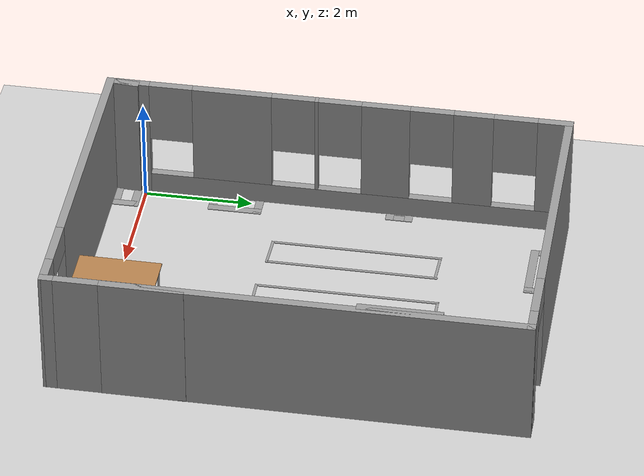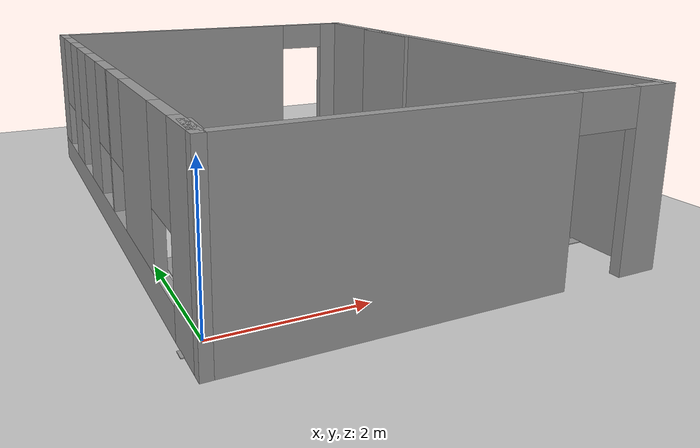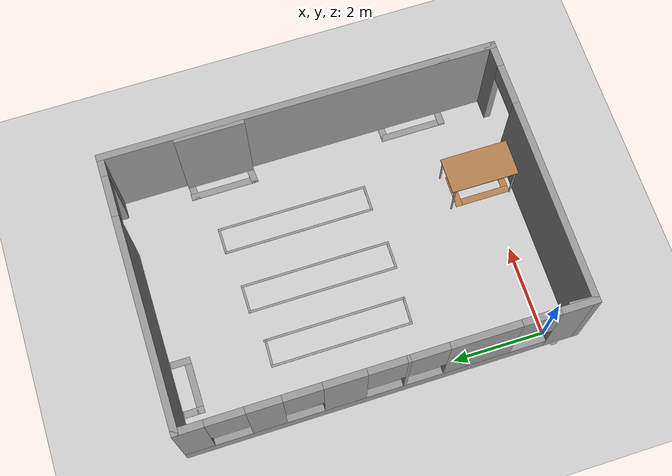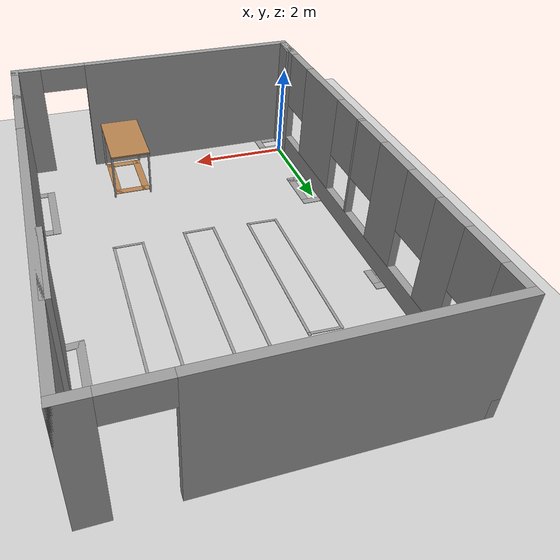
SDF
<sdf version="1.7">
 <world name="default">
  <light name="sun" type="directional">
   <pose>0 0 10 0 -0 0</pose>
   <diffuse>0.8 0.8 0.8 1</diffuse>
   <specular>0.2 0.2 0.2 1</specular>
   <attenuation>
    <range>1000</range>
    <constant>0.9</constant>
    <linear>0.01</linear>
    <quadratic>0.001</quadratic>
   </attenuation>
   <direction>-0.5 0.1 -0.9</direction>
   <spot><inner_angle>0</inner_angle><outer_angle>0</outer_angle><falloff>0</falloff></spot>
  </light>
  <model name="ground_plane">
   <static>1</static>
   <link name="link">
    <collision name="collision">
     <geometry><plane><normal>0 0 1</normal><size>100 100</size></plane></geometry>
     <surface>
      <contact><collide_bitmask>65535</collide_bitmask></contact>
      <friction><ode><mu>100</mu><mu2>50</mu2></ode></friction>
     </surface>
    </collision>
    <visual name="visual">
     <cast_shadows>0</cast_shadows>
     <geometry><plane><normal>0 0 1</normal><size>100 100</size></plane></geometry>
     <material>
      <script><uri>file://media/materials/scripts/gazebo.material</uri><name>Gazebo/Grey</name></script>
     </material>
    </visual>
   </link>
  </model>
  <gravity>0 0 -9.8</gravity>
  <magnetic_field>6e-06 2.3e-05 -4.2e-05</magnetic_field>
  <atmosphere type="adiabatic"/>
  <physics type="ode">
   <max_step_size>0.001</max_step_size>
   <real_time_factor>1</real_time_factor>
   <real_time_update_rate>1000</real_time_update_rate>
  </physics>
  <scene><ambient>0.4 0.4 0.4 1</ambient><background>0.7 0.7 0.7 1</background><shadows>1</shadows></scene>
  <spherical_coordinates>
   <surface_model>EARTH_WGS84</surface_model>
   <latitude_deg>0</latitude_deg>
   <longitude_deg>0</longitude_deg>
   <elevation>0</elevation>
   <heading_deg>0</heading_deg>
  </spherical_coordinates>
  <model name="csl_lab">
   <pose>2.72279 3.58776 -0.099865 0 -0 0</pose>
   <link name="Wall_0">
    <pose>0.018481 4.225 0 0 -0 0</pose>
    <visual name="Wall_0_Visual_0">
     <pose>-0.703474 0 1.25 0 -0 0</pose>
     <geometry><box><size>4.59305 0.15 2.5</size></box></geometry>
     <material>
      <script><uri>file://media/materials/scripts/gazebo.material</uri><name>Gazebo/Grey</name></script>
      <ambient>1 1 1 1</ambient>
     </material>
     <meta><layer>0</layer></meta>
    </visual>
    <collision name="Wall_0_Collision_0">
     <geometry><box><size>4.59305 0.15 2.5</size></box></geometry>
     <pose>-0.703474 0 1.25 0 -0 0</pose>
    </collision>
    <visual name="Wall_0_Visual_1">
     <pose>2.74653 0 1.25 0 -0 0</pose>
     <geometry><box><size>0.506948 0.15 2.5</size></box></geometry>
     <material>
      <script><uri>file://media/materials/scripts/gazebo.material</uri><name>Gazebo/Grey</name></script>
      <ambient>1 1 1 1</ambient>
     </material>
     <meta><layer>0</layer></meta>
    </visual>
    <collision name="Wall_0_Collision_1">
     <geometry><box><size>0.506948 0.15 2.5</size></box></geometry>
     <pose>2.74653 0 1.25 0 -0 0</pose>
    </collision>
    <visual name="Wall_0_Visual_2">
     <pose>2.04305 0 2.25 0 -0 0</pose>
     <geometry><box><size>0.9 0.15 0.5</size></box></geometry>
     <material>
      <script><uri>file://media/materials/scripts/gazebo.material</uri><name>Gazebo/Grey</name></script>
      <ambient>1 1 1 1</ambient>
     </material>
     <meta><layer>0</layer></meta>
    </visual>
    <collision name="Wall_0_Collision_2">
     <geometry><box><size>0.9 0.15 0.5</size></box></geometry>
     <pose>2.04305 0 2.25 0 -0 0</pose>
    </collision>
   </link>
   <link name="Wall_1">
    <collision name="Wall_1_Collision">
     <geometry><box><size>8.5 0.15 2.5</size></box></geometry>
     <pose>0 0 1.25 0 -0 0</pose>
    </collision>
    <visual name="Wall_1_Visual">
     <pose>0 0 1.25 0 -0 0</pose>
     <geometry><box><size>8.5 0.15 2.5</size></box></geometry>
     <material>
      <script><uri>file://media/materials/scripts/gazebo.material</uri><name>Gazebo/Grey</name></script>
      <ambient>1 1 1 1</ambient>
     </material>
     <meta><layer>0</layer></meta>
    </visual>
    <pose>2.94348 0.05 0 0 -0 -1.5708</pose>
   </link>
   <link name="Wall_11">
    <collision name="Wall_11_Collision">
     <geometry><box><size>0.649791 0.05 0.1</size></box></geometry>
     <pose>0 0 0.05 0 -0 0</pose>
    </collision>
    <visual name="Wall_11_Visual">
     <pose>0 0 0.05 0 -0 0</pose>
     <geometry><box><size>0.649791 0.05 0.1</size></box></geometry>
     <material>
      <script><uri>file://media/materials/scripts/gazebo.material</uri><name>Gazebo/Grey</name></script>
      <ambient>1 1 1 1</ambient>
     </material>
     <meta><layer>0</layer></meta>
    </visual>
    <pose>-0.072 2.21381 0 0 -0 0</pose>
   </link>
   <link name="Wall_12">
    <collision name="Wall_12_Collision">
     <geometry><box><size>3.35977 0.05 0.1</size></box></geometry>
     <pose>0 0 0.05 0 -0 0</pose>
    </collision>
    <visual name="Wall_12_Visual">
     <pose>0 0 0.05 0 -0 0</pose>
     <geometry><box><size>3.35977 0.05 0.1</size></box></geometry>
     <material>
      <script><uri>file://media/materials/scripts/gazebo.material</uri><name>Gazebo/Grey</name></script>
      <ambient>1 1 1 1</ambient>
     </material>
     <meta><layer>0</layer></meta>
    </visual>
    <pose>0.228 0.558922 0 0 -0 -1.5708</pose>
   </link>
   <link name="Wall_13">
    <collision name="Wall_13_Collision">
     <geometry><box><size>0.65 0.05 0.1</size></box></geometry>
     <pose>0 0 0.05 0 -0 0</pose>
    </collision>
    <visual name="Wall_13_Visual">
     <pose>0 0 0.05 0 -0 0</pose>
     <geometry><box><size>0.65 0.05 0.1</size></box></geometry>
     <material>
      <script><uri>file://media/materials/scripts/gazebo.material</uri><name>Gazebo/Grey</name></script>
      <ambient>1 1 1 1</ambient>
     </material>
     <meta><layer>0</layer></meta>
    </visual>
    <pose>-0.072 -1.09596 0 0 -0 3.14159</pose>
   </link>
   <link name="Wall_14">
    <collision name="Wall_14_Collision">
     <geometry><box><size>3.35977 0.05 0.1</size></box></geometry>
     <pose>0 0 0.05 0 -0 0</pose>
    </collision>
    <visual name="Wall_14_Visual">
     <pose>0 0 0.05 0 -0 0</pose>
     <geometry><box><size>3.35977 0.05 0.1</size></box></geometry>
     <material>
      <script><uri>file://media/materials/scripts/gazebo.material</uri><name>Gazebo/Grey</name></script>
      <ambient>1 1 1 1</ambient>
     </material>
     <meta><layer>0</layer></meta>
    </visual>
    <pose>-0.372 0.558922 0 0 -0 1.5708</pose>
   </link>
   <link name="Wall_16">
    <collision name="Wall_16_Collision">
     <geometry><box><size>0.589659 0.05 0.1</size></box></geometry>
     <pose>0 0 0.05 0 -0 0</pose>
    </collision>
    <visual name="Wall_16_Visual">
     <pose>0 0 0.05 0 -0 0</pose>
     <geometry><box><size>0.589659 0.05 0.1</size></box></geometry>
     <material>
      <script><uri>file://media/materials/scripts/gazebo.material</uri><name>Gazebo/Grey</name></script>
      <ambient>1 1 1 1</ambient>
     </material>
     <meta><layer>0</layer></meta>
    </visual>
    <pose>1.34583 2.33481 0 0 -0 0</pose>
   </link>
   <link name="Wall_17">
    <collision name="Wall_17_Collision">
     <geometry><box><size>3.4 0.05 0.1</size></box></geometry>
     <pose>0 0 0.05 0 -0 0</pose>
    </collision>
    <visual name="Wall_17_Visual">
     <pose>0 0 0.05 0 -0 0</pose>
     <geometry><box><size>3.4 0.05 0.1</size></box></geometry>
     <material>
      <script><uri>file://media/materials/scripts/gazebo.material</uri><name>Gazebo/Grey</name></script>
      <ambient>1 1 1 1</ambient>
     </material>
     <meta><layer>0</layer></meta>
    </visual>
    <pose>1.63577 0.659808 0 0 -0 -1.5708</pose>
   </link>
   <link name="Wall_18">
    <collision name="Wall_18_Collision">
     <geometry><box><size>0.589659 0.05 0.1</size></box></geometry>
     <pose>0 0 0.05 0 -0 0</pose>
    </collision>
    <visual name="Wall_18_Visual">
     <pose>0 0 0.05 0 -0 0</pose>
     <geometry><box><size>0.589659 0.05 0.1</size></box></geometry>
     <material>
      <script><uri>file://media/materials/scripts/gazebo.material</uri><name>Gazebo/Grey</name></script>
      <ambient>1 1 1 1</ambient>
     </material>
     <meta><layer>0</layer></meta>
    </visual>
    <pose>1.34583 -1.01519 0 0 -0 3.14159</pose>
   </link>
   <link name="Wall_19">
    <collision name="Wall_19_Collision">
     <geometry><box><size>3.4 0.05 0.1</size></box></geometry>
     <pose>0 0 0.05 0 -0 0</pose>
    </collision>
    <visual name="Wall_19_Visual">
     <pose>0 0 0.05 0 -0 0</pose>
     <geometry><box><size>3.4 0.05 0.1</size></box></geometry>
     <material>
      <script><uri>file://media/materials/scripts/gazebo.material</uri><name>Gazebo/Grey</name></script>
      <ambient>1 1 1 1</ambient>
     </material>
     <meta><layer>0</layer></meta>
    </visual>
    <pose>1.076 0.659808 0 0 -0 1.5708</pose>
   </link>
   <link name="Wall_2">
    <collision name="Wall_2_Collision">
     <geometry><box><size>0.25 0.15 2.5</size></box></geometry>
     <pose>0 0 1.25 0 -0 0</pose>
    </collision>
    <visual name="Wall_2_Visual">
     <pose>0 0 1.25 0 -0 0</pose>
     <geometry><box><size>0.25 0.15 2.5</size></box></geometry>
     <material>
      <script><uri>file://media/materials/scripts/gazebo.material</uri><name>Gazebo/Grey</name></script>
      <ambient>1 1 1 1</ambient>
     </material>
     <meta><layer>0</layer></meta>
    </visual>
    <pose>2.94348 -4.175 0 0 -0 -1.5708</pose>
   </link>
   <link name="Wall_21">
    <collision name="Wall_21_Collision">
     <geometry><box><size>0.25 0.15 0.1</size></box></geometry>
     <pose>0 0 0.05 0 -0 0</pose>
    </collision>
    <visual name="Wall_21_Visual">
     <pose>0 0 0.05 0 -0 0</pose>
     <geometry><box><size>0.25 0.15 0.1</size></box></geometry>
     <material>
      <script><uri>file://media/materials/scripts/gazebo.material</uri><name>Gazebo/Grey</name></script>
      <ambient>1 1 1 1</ambient>
     </material>
     <meta><layer>0</layer></meta>
    </visual>
    <pose>-2.776 1.34881 0 0 -0 0</pose>
   </link>
   <link name="Wall_22">
    <collision name="Wall_22_Collision">
     <geometry><box><size>0.5 0.15 0.1</size></box></geometry>
     <pose>0 0 0.05 0 -0 0</pose>
    </collision>
    <visual name="Wall_22_Visual">
     <pose>0 0 0.05 0 -0 0</pose>
     <geometry><box><size>0.5 0.15 0.1</size></box></geometry>
     <material>
      <script><uri>file://media/materials/scripts/gazebo.material</uri><name>Gazebo/Grey</name></script>
      <ambient>1 1 1 1</ambient>
     </material>
     <meta><layer>0</layer></meta>
    </visual>
    <pose>-2.726 1.17381 0 0 -0 -1.5708</pose>
   </link>
   <link name="Wall_23">
    <collision name="Wall_23_Collision">
     <geometry><box><size>0.25 0.15 0.1</size></box></geometry>
     <pose>0 0 0.05 0 -0 0</pose>
    </collision>
    <visual name="Wall_23_Visual">
     <pose>0 0 0.05 0 -0 0</pose>
     <geometry><box><size>0.25 0.15 0.1</size></box></geometry>
     <material>
      <script><uri>file://media/materials/scripts/gazebo.material</uri><name>Gazebo/Grey</name></script>
      <ambient>1 1 1 1</ambient>
     </material>
     <meta><layer>0</layer></meta>
    </visual>
    <pose>-2.776 0.998808 0 0 -0 3.14159</pose>
   </link>
   <link name="Wall_26">
    <collision name="Wall_26_Collision">
     <geometry><box><size>0.460425 0.15 0.1</size></box></geometry>
     <pose>0 0 0.05 0 -0 0</pose>
    </collision>
    <visual name="Wall_26_Visual">
     <pose>0 0 0.05 0 -0 0</pose>
     <geometry><box><size>0.460425 0.15 0.1</size></box></geometry>
     <material>
      <script><uri>file://media/materials/scripts/gazebo.material</uri><name>Gazebo/Grey</name></script>
      <ambient>1 1 1 1</ambient>
     </material>
     <meta><layer>0</layer></meta>
    </visual>
    <pose>2.71111 2.62575 0 0 -0 -3.07675</pose>
   </link>
   <link name="Wall_27">
    <collision name="Wall_27_Collision">
     <geometry><box><size>1.5 0.15 0.1</size></box></geometry>
     <pose>0 0 0.05 0 -0 0</pose>
    </collision>
    <visual name="Wall_27_Visual">
     <pose>0 0 0.05 0 -0 0</pose>
     <geometry><box><size>1.5 0.15 0.1</size></box></geometry>
     <material>
      <script><uri>file://media/materials/scripts/gazebo.material</uri><name>Gazebo/Grey</name></script>
      <ambient>1 1 1 1</ambient>
     </material>
     <meta><layer>0</layer></meta>
    </visual>
    <pose>2.55623 1.96081 0 0 -0 -1.5708</pose>
   </link>
   <link name="Wall_28">
    <collision name="Wall_28_Collision">
     <geometry><box><size>0.460425 0.15 0.1</size></box></geometry>
     <pose>0 0 0.05 0 -0 0</pose>
    </collision>
    <visual name="Wall_28_Visual">
     <pose>0 0 0.05 0 -0 0</pose>
     <geometry><box><size>0.460425 0.15 0.1</size></box></geometry>
     <material>
      <script><uri>file://media/materials/scripts/gazebo.material</uri><name>Gazebo/Grey</name></script>
      <ambient>1 1 1 1</ambient>
     </material>
     <meta><layer>0</layer></meta>
    </visual>
    <pose>2.71111 1.27575 0 0 -0 0.064839</pose>
   </link>
   <link name="Wall_29">
    <collision name="Wall_29_Collision">
     <geometry><box><size>1.5 0.15 2.5</size></box></geometry>
     <pose>0 0 1.25 0 -0 0</pose>
    </collision>
    <visual name="Wall_29_Visual">
     <pose>0 0 1.25 0 -0 0</pose>
     <geometry><box><size>1.5 0.15 2.5</size></box></geometry>
     <material>
      <script><uri>file://media/materials/scripts/gazebo.material</uri><name>Gazebo/Grey</name></script>
      <ambient>1 1 1 1</ambient>
     </material>
     <meta><layer>0</layer></meta>
    </visual>
    <pose>2.866 1.96081 0 0 -0 1.5708</pose>
   </link>
   <link name="Wall_3">
    <pose>0.018481 -4.225 0 0 -0 3.14159</pose>
    <visual name="Wall_3_Visual_0">
     <pose>-2.7063 0 1.25 0 -0 0</pose>
     <geometry><box><size>0.587402 0.15 2.5</size></box></geometry>
     <material>
      <script><uri>file://media/materials/scripts/gazebo.material</uri><name>Gazebo/Grey</name></script>
      <ambient>1 1 1 1</ambient>
     </material>
     <meta><layer>0</layer></meta>
    </visual>
    <collision name="Wall_3_Collision_0">
     <geometry><box><size>0.587402 0.15 2.5</size></box></geometry>
     <pose>-2.7063 0 1.25 0 -0 0</pose>
    </collision>
    <visual name="Wall_3_Visual_1">
     <pose>0.743701 0 1.25 0 -0 0</pose>
     <geometry><box><size>4.5126 0.15 2.5</size></box></geometry>
     <material>
      <script><uri>file://media/materials/scripts/gazebo.material</uri><name>Gazebo/Grey</name></script>
      <ambient>1 1 1 1</ambient>
     </material>
     <meta><layer>0</layer></meta>
    </visual>
    <collision name="Wall_3_Collision_1">
     <geometry><box><size>4.5126 0.15 2.5</size></box></geometry>
     <pose>0.743701 0 1.25 0 -0 0</pose>
    </collision>
    <visual name="Wall_3_Visual_2">
     <pose>-1.9626 0 2.25 0 -0 0</pose>
     <geometry><box><size>0.9 0.15 0.5</size></box></geometry>
     <material>
      <script><uri>file://media/materials/scripts/gazebo.material</uri><name>Gazebo/Grey</name></script>
      <ambient>1 1 1 1</ambient>
     </material>
     <meta><layer>0</layer></meta>
    </visual>
    <collision name="Wall_3_Collision_2">
     <geometry><box><size>0.9 0.15 0.5</size></box></geometry>
     <pose>-1.9626 0 2.25 0 -0 0</pose>
    </collision>
   </link>
   <link name="Wall_31">
    <collision name="Wall_31_Collision">
     <geometry><box><size>0.439659 0.15 0.1</size></box></geometry>
     <pose>0 0 0.05 0 -0 0</pose>
    </collision>
    <visual name="Wall_31_Visual">
     <pose>0 0 0.05 0 -0 0</pose>
     <geometry><box><size>0.439659 0.15 0.1</size></box></geometry>
     <material>
      <script><uri>file://media/materials/scripts/gazebo.material</uri><name>Gazebo/Grey</name></script>
      <ambient>1 1 1 1</ambient>
     </material>
     <meta><layer>0</layer></meta>
    </visual>
    <pose>-2.102 3.91898 0 0 -0 -1.5708</pose>
   </link>
   <link name="Wall_32">
    <collision name="Wall_32_Collision">
     <geometry><box><size>1.25 0.15 0.1</size></box></geometry>
     <pose>0 0 0.05 0 -0 0</pose>
    </collision>
    <visual name="Wall_32_Visual">
     <pose>0 0 0.05 0 -0 0</pose>
     <geometry><box><size>1.25 0.15 0.1</size></box></geometry>
     <material>
      <script><uri>file://media/materials/scripts/gazebo.material</uri><name>Gazebo/Grey</name></script>
      <ambient>1 1 1 1</ambient>
     </material>
     <meta><layer>0</layer></meta>
    </visual>
    <pose>-1.552 3.77415 0 0 -0 0</pose>
   </link>
   <link name="Wall_33">
    <collision name="Wall_33_Collision">
     <geometry><box><size>0.439659 0.15 0.1</size></box></geometry>
     <pose>0 0 0.05 0 -0 0</pose>
    </collision>
    <visual name="Wall_33_Visual">
     <pose>0 0 0.05 0 -0 0</pose>
     <geometry><box><size>0.439659 0.15 0.1</size></box></geometry>
     <material>
      <script><uri>file://media/materials/scripts/gazebo.material</uri><name>Gazebo/Grey</name></script>
      <ambient>1 1 1 1</ambient>
     </material>
     <meta><layer>0</layer></meta>
    </visual>
    <pose>-1.002 3.91898 0 0 -0 1.5708</pose>
   </link>
   <link name="Wall_36">
    <collision name="Wall_36_Collision">
     <geometry><box><size>0.75 0.15 0.1</size></box></geometry>
     <pose>0 0 0.05 0 -0 0</pose>
    </collision>
    <visual name="Wall_36_Visual">
     <pose>0 0 0.05 0 -0 0</pose>
     <geometry><box><size>0.75 0.15 0.1</size></box></geometry>
     <material>
      <script><uri>file://media/materials/scripts/gazebo.material</uri><name>Gazebo/Wood</name></script>
      <ambient>1 1 1 1</ambient>
     </material>
     <meta><layer>0</layer></meta>
    </visual>
    <pose>0.933 -2.89519 0 0 -0 0</pose>
   </link>
   <link name="Wall_37">
    <collision name="Wall_37_Collision">
     <geometry><box><size>1.25 0.15 0.1</size></box></geometry>
     <pose>0 0 0.05 0 -0 0</pose>
    </collision>
    <visual name="Wall_37_Visual">
     <pose>0 0 0.05 0 -0 0</pose>
     <geometry><box><size>1.25 0.15 0.1</size></box></geometry>
     <material>
      <script><uri>file://media/materials/scripts/gazebo.material</uri><name>Gazebo/Wood</name></script>
      <ambient>1 1 1 1</ambient>
     </material>
     <meta><layer>0</layer></meta>
    </visual>
    <pose>1.233 -3.44519 0 0 -0 -1.5708</pose>
   </link>
   <link name="Wall_38">
    <collision name="Wall_38_Collision">
     <geometry><box><size>0.75 0.15 0.1</size></box></geometry>
     <pose>0 0 0.05 0 -0 0</pose>
    </collision>
    <visual name="Wall_38_Visual">
     <pose>0 0 0.05 0 -0 0</pose>
     <geometry><box><size>0.75 0.15 0.1</size></box></geometry>
     <material>
      <script><uri>file://media/materials/scripts/gazebo.material</uri><name>Gazebo/Wood</name></script>
      <ambient>1 1 1 1</ambient>
     </material>
     <meta><layer>0</layer></meta>
    </visual>
    <pose>0.933 -3.99519 0 0 -0 3.14159</pose>
   </link>
   <link name="Wall_39">
    <collision name="Wall_39_Collision">
     <geometry><box><size>1.25 0.15 0.1</size></box></geometry>
     <pose>0 0 0.05 0 -0 0</pose>
    </collision>
    <visual name="Wall_39_Visual">
     <pose>0 0 0.05 0 -0 0</pose>
     <geometry><box><size>1.25 0.15 0.1</size></box></geometry>
     <material>
      <script><uri>file://media/materials/scripts/gazebo.material</uri><name>Gazebo/Wood</name></script>
      <ambient>1 1 1 1</ambient>
     </material>
     <meta><layer>0</layer></meta>
    </visual>
    <pose>0.633 -3.44519 0 0 -0 1.5708</pose>
   </link>
   <link name="Wall_4">
    <pose>-2.90652 0 0 0 -0 1.5708</pose>
    <visual name="Wall_4_Visual_0">
     <pose>-3.89817 0 1.25 0 -0 0</pose>
     <geometry><box><size>0.80366 0.15 2.5</size></box></geometry>
     <material>
      <script><uri>file://media/materials/scripts/gazebo.material</uri><name>Gazebo/Grey</name></script>
      <ambient>1 1 1 1</ambient>
     </material>
     <meta><layer>0</layer></meta>
    </visual>
    <collision name="Wall_4_Collision_0">
     <geometry><box><size>0.80366 0.15 2.5</size></box></geometry>
     <pose>-3.89817 0 1.25 0 -0 0</pose>
    </collision>
    <visual name="Wall_4_Visual_1">
     <pose>0.40183 0 0.25 0 -0 0</pose>
     <geometry><box><size>7.79634 0.15 0.5</size></box></geometry>
     <material>
      <script><uri>file://media/materials/scripts/gazebo.material</uri><name>Gazebo/Grey</name></script>
      <ambient>1 1 1 1</ambient>
     </material>
     <meta><layer>0</layer></meta>
    </visual>
    <collision name="Wall_4_Collision_1">
     <geometry><box><size>7.79634 0.15 0.5</size></box></geometry>
     <pose>0.40183 0 0.25 0 -0 0</pose>
    </collision>
    <visual name="Wall_4_Visual_2">
     <pose>-1.95992 0 1.5 0 -0 0</pose>
     <geometry><box><size>1.47283 0.15 2</size></box></geometry>
     <material>
      <script><uri>file://media/materials/scripts/gazebo.material</uri><name>Gazebo/Grey</name></script>
      <ambient>1 1 1 1</ambient>
     </material>
     <meta><layer>0</layer></meta>
    </visual>
    <collision name="Wall_4_Collision_2">
     <geometry><box><size>1.47283 0.15 2</size></box></geometry>
     <pose>-1.95992 0 1.5 0 -0 0</pose>
    </collision>
    <visual name="Wall_4_Visual_3">
     <pose>-0.391065 0 1.5 0 -0 0</pose>
     <geometry><box><size>0.064884 0.15 2</size></box></geometry>
     <material>
      <script><uri>file://media/materials/scripts/gazebo.material</uri><name>Gazebo/Grey</name></script>
      <ambient>1 1 1 1</ambient>
     </material>
     <meta><layer>0</layer></meta>
    </visual>
    <collision name="Wall_4_Collision_3">
     <geometry><box><size>0.064884 0.15 2</size></box></geometry>
     <pose>-0.391065 0 1.5 0 -0 0</pose>
    </collision>
    <visual name="Wall_4_Visual_4">
     <pose>0.886147 0 1.5 0 -0 0</pose>
     <geometry><box><size>0.88954 0.15 2</size></box></geometry>
     <material>
      <script><uri>file://media/materials/scripts/gazebo.material</uri><name>Gazebo/Grey</name></script>
      <ambient>1 1 1 1</ambient>
     </material>
     <meta><layer>0</layer></meta>
    </visual>
    <collision name="Wall_4_Collision_4">
     <geometry><box><size>0.88954 0.15 2</size></box></geometry>
     <pose>0.886147 0 1.5 0 -0 0</pose>
    </collision>
    <visual name="Wall_4_Visual_5">
     <pose>2.49523 0 1.5 0 -0 0</pose>
     <geometry><box><size>0.728631 0.15 2</size></box></geometry>
     <material>
      <script><uri>file://media/materials/scripts/gazebo.material</uri><name>Gazebo/Grey</name></script>
      <ambient>1 1 1 1</ambient>
     </material>
     <meta><layer>0</layer></meta>
    </visual>
    <collision name="Wall_4_Collision_5">
     <geometry><box><size>0.728631 0.15 2</size></box></geometry>
     <pose>2.49523 0 1.5 0 -0 0</pose>
    </collision>
    <visual name="Wall_4_Visual_6">
     <pose>3.97977 0 1.5 0 -0 0</pose>
     <geometry><box><size>0.640451 0.15 2</size></box></geometry>
     <material>
      <script><uri>file://media/materials/scripts/gazebo.material</uri><name>Gazebo/Grey</name></script>
      <ambient>1 1 1 1</ambient>
     </material>
     <meta><layer>0</layer></meta>
    </visual>
    <collision name="Wall_4_Collision_6">
     <geometry><box><size>0.640451 0.15 2</size></box></geometry>
     <pose>3.97977 0 1.5 0 -0 0</pose>
    </collision>
    <visual name="Wall_4_Visual_7">
     <pose>-3.09634 0 1.9 0 -0 0</pose>
     <geometry><box><size>0.8 0.15 1.2</size></box></geometry>
     <material>
      <script><uri>file://media/materials/scripts/gazebo.material</uri><name>Gazebo/Grey</name></script>
      <ambient>1 1 1 1</ambient>
     </material>
     <meta><layer>0</layer></meta>
    </visual>
    <collision name="Wall_4_Collision_7">
     <geometry><box><size>0.8 0.15 1.2</size></box></geometry>
     <pose>-3.09634 0 1.9 0 -0 0</pose>
    </collision>
    <visual name="Wall_4_Visual_8">
     <pose>-0.823507 0 1.9 0 -0 0</pose>
     <geometry><box><size>0.8 0.15 1.2</size></box></geometry>
     <material>
      <script><uri>file://media/materials/scripts/gazebo.material</uri><name>Gazebo/Grey</name></script>
      <ambient>1 1 1 1</ambient>
     </material>
     <meta><layer>0</layer></meta>
    </visual>
    <collision name="Wall_4_Collision_8">
     <geometry><box><size>0.8 0.15 1.2</size></box></geometry>
     <pose>-0.823507 0 1.9 0 -0 0</pose>
    </collision>
    <visual name="Wall_4_Visual_9">
     <pose>0.041377 0 1.9 0 -0 0</pose>
     <geometry><box><size>0.8 0.15 1.2</size></box></geometry>
     <material>
      <script><uri>file://media/materials/scripts/gazebo.material</uri><name>Gazebo/Grey</name></script>
      <ambient>1 1 1 1</ambient>
     </material>
     <meta><layer>0</layer></meta>
    </visual>
    <collision name="Wall_4_Collision_9">
     <geometry><box><size>0.8 0.15 1.2</size></box></geometry>
     <pose>0.041377 0 1.9 0 -0 0</pose>
    </collision>
    <visual name="Wall_4_Visual_10">
     <pose>1.73092 0 1.9 0 -0 0</pose>
     <geometry><box><size>0.8 0.15 1.2</size></box></geometry>
     <material>
      <script><uri>file://media/materials/scripts/gazebo.material</uri><name>Gazebo/Grey</name></script>
      <ambient>1 1 1 1</ambient>
     </material>
     <meta><layer>0</layer></meta>
    </visual>
    <collision name="Wall_4_Collision_10">
     <geometry><box><size>0.8 0.15 1.2</size></box></geometry>
     <pose>1.73092 0 1.9 0 -0 0</pose>
    </collision>
    <visual name="Wall_4_Visual_11">
     <pose>3.25955 0 1.9 0 -0 0</pose>
     <geometry><box><size>0.8 0.15 1.2</size></box></geometry>
     <material>
      <script><uri>file://media/materials/scripts/gazebo.material</uri><name>Gazebo/Grey</name></script>
      <ambient>1 1 1 1</ambient>
     </material>
     <meta><layer>0</layer></meta>
    </visual>
    <collision name="Wall_4_Collision_11">
     <geometry><box><size>0.8 0.15 1.2</size></box></geometry>
     <pose>3.25955 0 1.9 0 -0 0</pose>
    </collision>
   </link>
   <link name="Wall_41">
    <collision name="Wall_41_Collision">
     <geometry><box><size>0.439659 0.15 0.1</size></box></geometry>
     <pose>0 0 0.05 0 -0 0</pose>
    </collision>
    <visual name="Wall_41_Visual">
     <pose>0 0 0.05 0 -0 0</pose>
     <geometry><box><size>0.439659 0.15 0.1</size></box></geometry>
     <material>
      <script><uri>file://media/materials/scripts/gazebo.material</uri><name>Gazebo/Grey</name></script>
      <ambient>1 1 1 1</ambient>
     </material>
     <meta><layer>0</layer></meta>
    </visual>
    <pose>2.80217 -1.82919 0 0 -0 3.14159</pose>
   </link>
   <link name="Wall_42">
    <collision name="Wall_42_Collision">
     <geometry><box><size>1.5 0.15 0.1</size></box></geometry>
     <pose>0 0 0.05 0 -0 0</pose>
    </collision>
    <visual name="Wall_42_Visual">
     <pose>0 0 0.05 0 -0 0</pose>
     <geometry><box><size>1.5 0.15 0.1</size></box></geometry>
     <material>
      <script><uri>file://media/materials/scripts/gazebo.material</uri><name>Gazebo/Grey</name></script>
      <ambient>1 1 1 1</ambient>
     </material>
     <meta><layer>0</layer></meta>
    </visual>
    <pose>2.63723 -2.50419 0 0 -0 -1.5708</pose>
   </link>
   <link name="Wall_43">
    <collision name="Wall_43_Collision">
     <geometry><box><size>0.439659 0.15 0.1</size></box></geometry>
     <pose>0 0 0.05 0 -0 0</pose>
    </collision>
    <visual name="Wall_43_Visual">
     <pose>0 0 0.05 0 -0 0</pose>
     <geometry><box><size>0.439659 0.15 0.1</size></box></geometry>
     <material>
      <script><uri>file://media/materials/scripts/gazebo.material</uri><name>Gazebo/Grey</name></script>
      <ambient>1 1 1 1</ambient>
     </material>
     <meta><layer>0</layer></meta>
    </visual>
    <pose>2.80217 -3.17919 0 0 -0 0</pose>
   </link>
   <link name="Wall_44">
    <collision name="Wall_44_Collision">
     <geometry><box><size>1.5 0.15 2.5</size></box></geometry>
     <pose>0 0 1.25 0 -0 0</pose>
    </collision>
    <visual name="Wall_44_Visual">
     <pose>0 0 1.25 0 -0 0</pose>
     <geometry><box><size>1.5 0.15 2.5</size></box></geometry>
     <material>
      <script><uri>file://media/materials/scripts/gazebo.material</uri><name>Gazebo/Grey</name></script>
      <ambient>1 1 1 1</ambient>
     </material>
     <meta><layer>0</layer></meta>
    </visual>
    <pose>2.947 -2.50419 0 0 -0 1.5708</pose>
   </link>
   <link name="Wall_46">
    <collision name="Wall_46_Collision">
     <geometry><box><size>0.5 0.15 0.1</size></box></geometry>
     <pose>0 0 0.05 0 -0 0</pose>
    </collision>
    <visual name="Wall_46_Visual">
     <pose>0 0 0.05 0 -0 0</pose>
     <geometry><box><size>0.5 0.15 0.1</size></box></geometry>
     <material>
      <script><uri>file://media/materials/scripts/gazebo.material</uri><name>Gazebo/Grey</name></script>
      <ambient>1 1 1 1</ambient>
     </material>
     <meta><layer>0</layer></meta>
    </visual>
    <pose>-2.691 -1.44719 0 0 -0 0</pose>
   </link>
   <link name="Wall_47">
    <collision name="Wall_47_Collision">
     <geometry><box><size>1 0.15 0.1</size></box></geometry>
     <pose>0 0 0.05 0 -0 0</pose>
    </collision>
    <visual name="Wall_47_Visual">
     <pose>0 0 0.05 0 -0 0</pose>
     <geometry><box><size>1 0.15 0.1</size></box></geometry>
     <material>
      <script><uri>file://media/materials/scripts/gazebo.material</uri><name>Gazebo/Grey</name></script>
      <ambient>1 1 1 1</ambient>
     </material>
     <meta><layer>0</layer></meta>
    </visual>
    <pose>-2.516 -1.87219 0 0 -0 -1.5708</pose>
   </link>
   <link name="Wall_48">
    <collision name="Wall_48_Collision">
     <geometry><box><size>0.5 0.15 0.1</size></box></geometry>
     <pose>0 0 0.05 0 -0 0</pose>
    </collision>
    <visual name="Wall_48_Visual">
     <pose>0 0 0.05 0 -0 0</pose>
     <geometry><box><size>0.5 0.15 0.1</size></box></geometry>
     <material>
      <script><uri>file://media/materials/scripts/gazebo.material</uri><name>Gazebo/Grey</name></script>
      <ambient>1 1 1 1</ambient>
     </material>
     <meta><layer>0</layer></meta>
    </visual>
    <pose>-2.691 -2.29719 0 0 -0 3.14159</pose>
   </link>
   <link name="Wall_51">
    <collision name="Wall_51_Collision">
     <geometry><box><size>0.709773 0.15 0.1</size></box></geometry>
     <pose>0 0 0.05 0 -0 0</pose>
    </collision>
    <visual name="Wall_51_Visual">
     <pose>0 0 0.05 0 -0 0</pose>
     <geometry><box><size>0.709773 0.15 0.1</size></box></geometry>
     <material>
      <script><uri>file://media/materials/scripts/gazebo.material</uri><name>Gazebo/Grey</name></script>
      <ambient>1 1 1 1</ambient>
     </material>
     <meta><layer>0</layer></meta>
    </visual>
    <pose>-2.66711 -3.74019 0 0 -0 0</pose>
   </link>
   <link name="Wall_52">
    <collision name="Wall_52_Collision">
     <geometry><box><size>0.5 0.15 0.1</size></box></geometry>
     <pose>0 0 0.05 0 -0 0</pose>
    </collision>
    <visual name="Wall_52_Visual">
     <pose>0 0 0.05 0 -0 0</pose>
     <geometry><box><size>0.5 0.15 0.1</size></box></geometry>
     <material>
      <script><uri>file://media/materials/scripts/gazebo.material</uri><name>Gazebo/Grey</name></script>
      <ambient>1 1 1 1</ambient>
     </material>
     <meta><layer>0</layer></meta>
    </visual>
    <pose>-2.38723 -3.91519 0 0 -0 -1.5708</pose>
   </link>
   <link name="Wall_53">
    <collision name="Wall_53_Collision">
     <geometry><box><size>0.648917 0.15 0.1</size></box></geometry>
     <pose>0 0 0.05 0 -0 0</pose>
    </collision>
    <visual name="Wall_53_Visual">
     <pose>0 0 0.05 0 -0 0</pose>
     <geometry><box><size>0.648917 0.15 0.1</size></box></geometry>
     <material>
      <script><uri>file://media/materials/scripts/gazebo.material</uri><name>Gazebo/Grey</name></script>
      <ambient>1 1 1 1</ambient>
     </material>
     <meta><layer>0</layer></meta>
    </visual>
    <pose>-2.63661 -4.09619 0 0 -0 -3.11754</pose>
   </link>
   <link name="Wall_54">
    <collision name="Wall_54_Collision">
     <geometry><box><size>0.492522 0.15 2.5</size></box></geometry>
     <pose>0 0 1.25 0 -0 0</pose>
    </collision>
    <visual name="Wall_54_Visual">
     <pose>0 0 1.25 0 -0 0</pose>
     <geometry><box><size>0.492522 0.15 2.5</size></box></geometry>
     <material>
      <script><uri>file://media/materials/scripts/gazebo.material</uri><name>Gazebo/Grey</name></script>
      <ambient>1 1 1 1</ambient>
     </material>
     <meta><layer>0</layer></meta>
    </visual>
    <pose>-2.87615 -3.93114 0 0 -0 1.51325</pose>
   </link>
   <link name="Wall_6">
    <collision name="Wall_6_Collision">
     <geometry><box><size>0.630235 0.05 0.1</size></box></geometry>
     <pose>0 0 0.05 0 -0 0</pose>
    </collision>
    <visual name="Wall_6_Visual">
     <pose>0 0 0.05 0 -0 0</pose>
     <geometry><box><size>0.630235 0.05 0.1</size></box></geometry>
     <material>
      <script><uri>file://media/materials/scripts/gazebo.material</uri><name>Gazebo/Grey</name></script>
      <ambient>1 1 1 1</ambient>
     </material>
     <meta><layer>0</layer></meta>
    </visual>
    <pose>-1.36906 2.08275 0 0 -0 -0.034671</pose>
   </link>
   <link name="Wall_7">
    <collision name="Wall_7_Collision">
     <geometry><box><size>3.15 0.05 0.1</size></box></geometry>
     <pose>0 0 0.05 0 -0 0</pose>
    </collision>
    <visual name="Wall_7_Visual">
     <pose>0 0 0.05 0 -0 0</pose>
     <geometry><box><size>3.15 0.05 0.1</size></box></geometry>
     <material>
      <script><uri>file://media/materials/scripts/gazebo.material</uri><name>Gazebo/Grey</name></script>
      <ambient>1 1 1 1</ambient>
     </material>
     <meta><layer>0</layer></meta>
    </visual>
    <pose>-1.07911 0.542808 0 0 -0 -1.5708</pose>
   </link>
   <link name="Wall_8">
    <collision name="Wall_8_Collision">
     <geometry><box><size>0.630235 0.05 0.1</size></box></geometry>
     <pose>0 0 0.05 0 -0 0</pose>
    </collision>
    <visual name="Wall_8_Visual">
     <pose>0 0 0.05 0 -0 0</pose>
     <geometry><box><size>0.630235 0.05 0.1</size></box></geometry>
     <material>
      <script><uri>file://media/materials/scripts/gazebo.material</uri><name>Gazebo/Grey</name></script>
      <ambient>1 1 1 1</ambient>
     </material>
     <meta><layer>0</layer></meta>
    </visual>
    <pose>-1.36906 -1.01725 0 0 -0 3.10692</pose>
   </link>
   <link name="Wall_9">
    <collision name="Wall_9_Collision">
     <geometry><box><size>3.15 0.05 0.1</size></box></geometry>
     <pose>0 0 0.05 0 -0 0</pose>
    </collision>
    <visual name="Wall_9_Visual">
     <pose>0 0 0.05 0 -0 0</pose>
     <geometry><box><size>3.15 0.05 0.1</size></box></geometry>
     <material>
      <script><uri>file://media/materials/scripts/gazebo.material</uri><name>Gazebo/Grey</name></script>
      <ambient>1 1 1 1</ambient>
     </material>
     <meta><layer>0</layer></meta>
    </visual>
    <pose>-1.659 0.542808 0 0 -0 1.5708</pose>
   </link>
   <static>1</static>
  </model>
  <model name="table">
   <static>1</static>
   <link name="link">
    <collision name="surface">
     <pose>0 0 1 0 -0 0</pose>
     <geometry><box><size>1.5 0.8 0.03</size></box></geometry>
     <surface><friction><ode><mu>0.6</mu><mu2>0.6</mu2></ode></friction></surface>
    </collision>
    <visual name="visual1">
     <pose>0 0 1 0 -0 0</pose>
     <geometry><box><size>1.5 0.8 0.03</size></box></geometry>
     <material>
      <script><uri>file://media/materials/scripts/gazebo.material</uri><name>Gazebo/Wood</name></script>
     </material>
    </visual>
    <collision name="front_left_leg">
     <pose>0.68 0.38 0.5 0 -0 0</pose>
     <geometry><cylinder><radius>0.02</radius><length>1</length></cylinder></geometry>
    </collision>
    <visual name="front_left_leg">
     <pose>0.68 0.38 0.5 0 -0 0</pose>
     <geometry><cylinder><radius>0.02</radius><length>1</length></cylinder></geometry>
     <material>
      <script><uri>file://media/materials/scripts/gazebo.material</uri><name>Gazebo/Grey</name></script>
     </material>
    </visual>
    <collision name="front_right_leg">
     <pose>0.68 -0.38 0.5 0 -0 0</pose>
     <geometry><cylinder><radius>0.02</radius><length>1</length></cylinder></geometry>
    </collision>
    <visual name="front_right_leg">
     <pose>0.68 -0.38 0.5 0 -0 0</pose>
     <geometry><cylinder><radius>0.02</radius><length>1</length></cylinder></geometry>
     <material>
      <script><uri>file://media/materials/scripts/gazebo.material</uri><name>Gazebo/Grey</name></script>
     </material>
    </visual>
    <collision name="back_right_leg">
     <pose>-0.68 -0.38 0.5 0 -0 0</pose>
     <geometry><cylinder><radius>0.02</radius><length>1</length></cylinder></geometry>
    </collision>
    <visual name="back_right_leg">
     <pose>-0.68 -0.38 0.5 0 -0 0</pose>
     <geometry><cylinder><radius>0.02</radius><length>1</length></cylinder></geometry>
     <material>
      <script><uri>file://media/materials/scripts/gazebo.material</uri><name>Gazebo/Grey</name></script>
     </material>
    </visual>
    <collision name="back_left_leg">
     <pose>-0.68 0.38 0.5 0 -0 0</pose>
     <geometry><cylinder><radius>0.02</radius><length>1</length></cylinder></geometry>
    </collision>
    <visual name="back_left_leg">
     <pose>-0.68 0.38 0.5 0 -0 0</pose>
     <geometry><cylinder><radius>0.02</radius><length>1</length></cylinder></geometry>
     <material>
      <script><uri>file://media/materials/scripts/gazebo.material</uri><name>Gazebo/Grey</name></script>
     </material>
    </visual>
   </link>
   <pose>3.66242 0.205618 0 0 0 -1.5751</pose>
  </model>
 </world>
</sdf>
